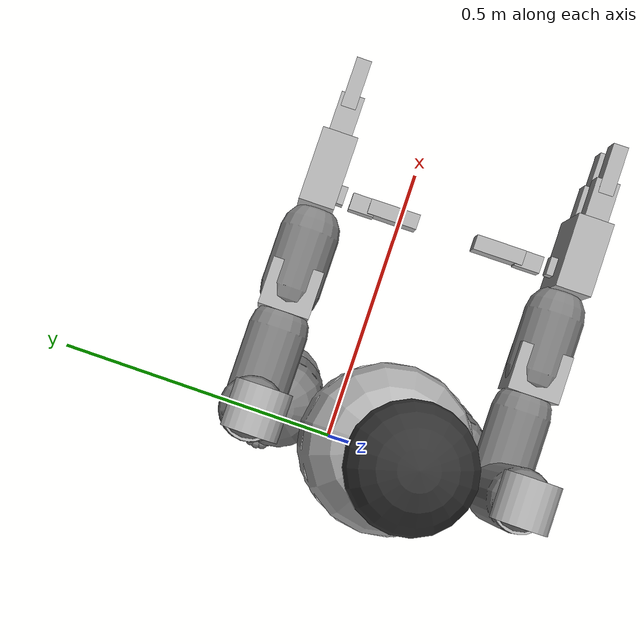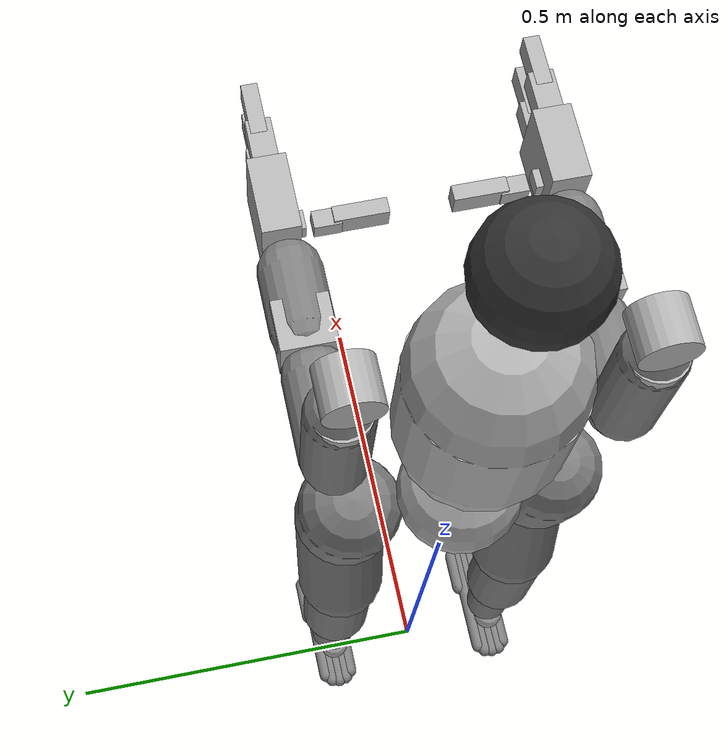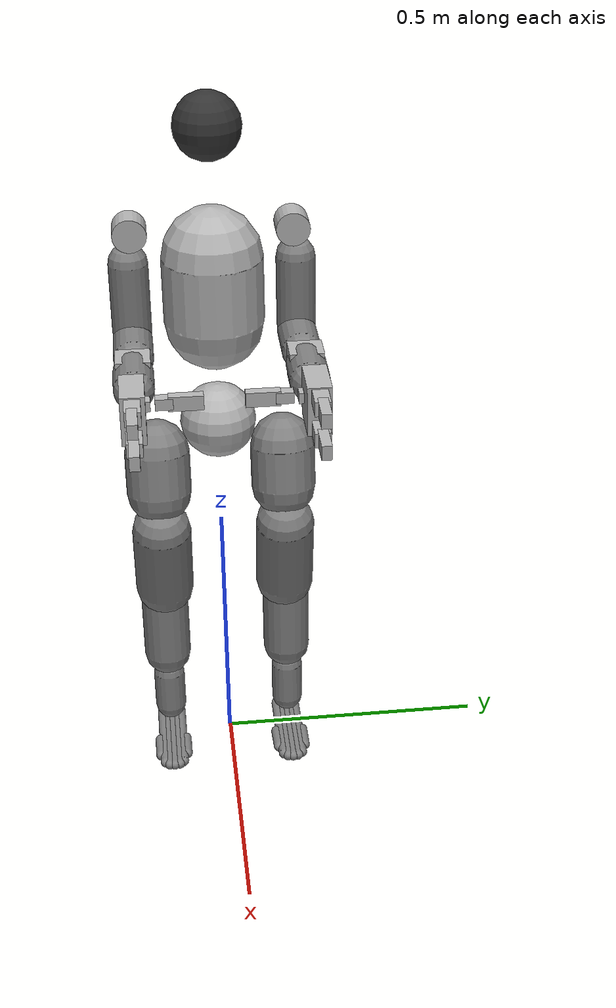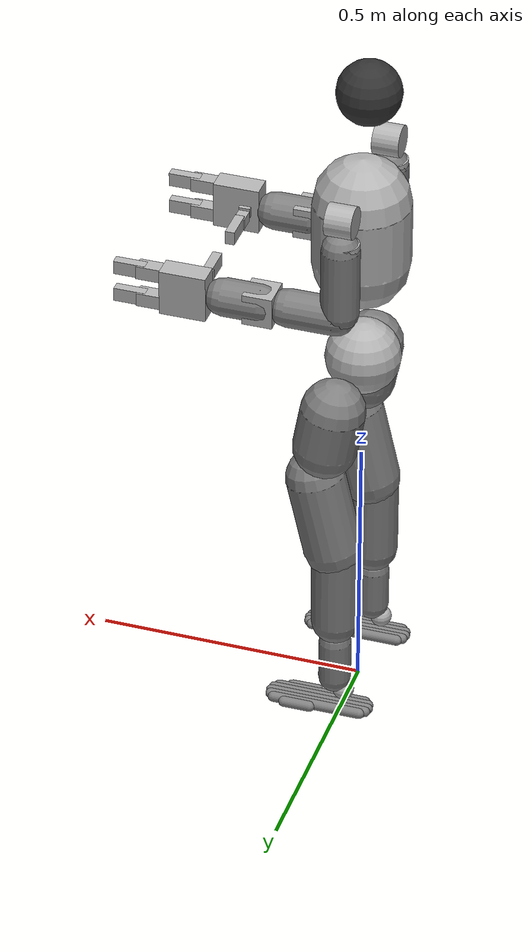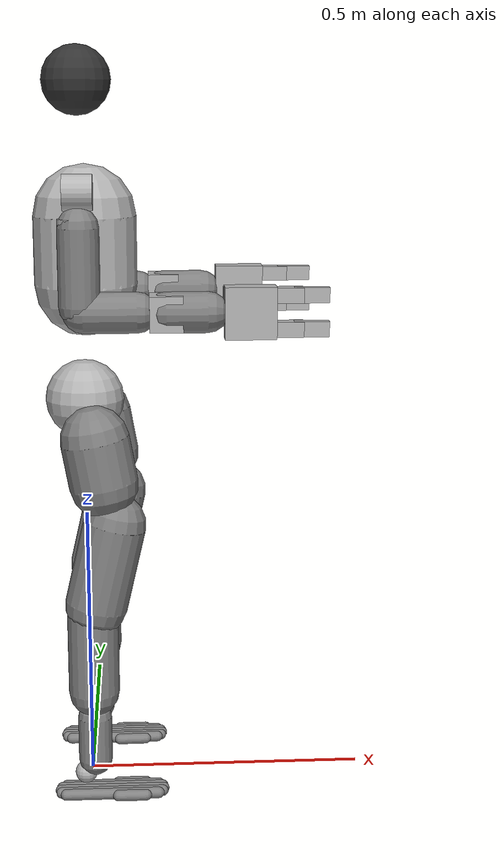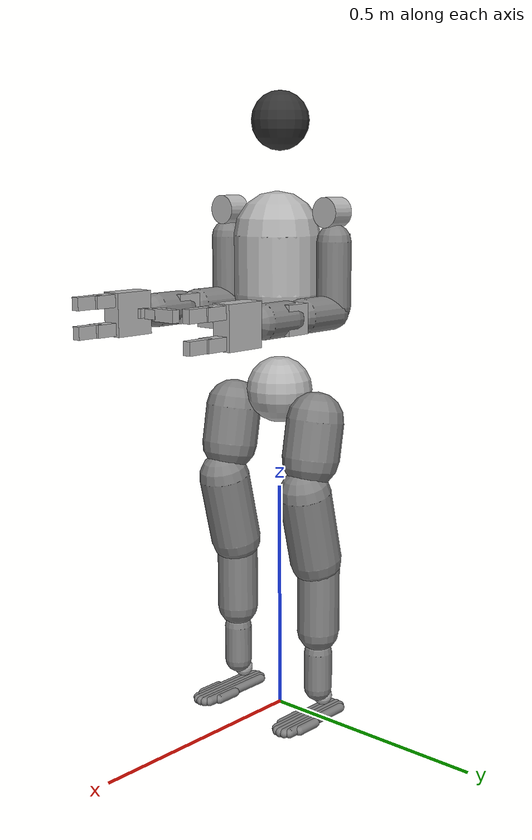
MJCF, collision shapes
<mujoco model="g1">
  <compiler angle="radian" meshdir="meshes"/>

  <asset>
    <mesh name="pelvis" file="pelvis.STL"/>
    <mesh name="pelvis_contour_link" file="pelvis_contour_link.STL"/>
    <mesh name="left_hip_pitch_link" file="left_hip_pitch_link.STL"/>
    <mesh name="left_hip_roll_link" file="left_hip_roll_link.STL"/>
    <mesh name="left_hip_yaw_link" file="left_hip_yaw_link.STL"/>
    <mesh name="left_knee_link" file="left_knee_link.STL"/>
    <mesh name="left_ankle_pitch_link" file="left_ankle_pitch_link.STL"/>
    <mesh name="left_ankle_roll_link" file="left_ankle_roll_link.STL"/>
    <mesh name="right_hip_pitch_link" file="right_hip_pitch_link.STL"/>
    <mesh name="right_hip_roll_link" file="right_hip_roll_link.STL"/>
    <mesh name="right_hip_yaw_link" file="right_hip_yaw_link.STL"/>
    <mesh name="right_knee_link" file="right_knee_link.STL"/>
    <mesh name="right_ankle_pitch_link" file="right_ankle_pitch_link.STL"/>
    <mesh name="right_ankle_roll_link" file="right_ankle_roll_link.STL"/>
    <mesh name="waist_yaw_link" file="waist_yaw_link_rev_1_0.STL"/>
    <mesh name="waist_roll_link" file="waist_roll_link_rev_1_0.STL"/>
    <mesh name="torso_link" file="torso_link_rev_1_0.STL"/>
    <mesh name="logo_link" file="logo_link.STL"/>
    <mesh name="head_link" file="head_link.STL"/>
    <mesh name="left_shoulder_pitch_link" file="left_shoulder_pitch_link.STL"/>
    <mesh name="left_shoulder_roll_link" file="left_shoulder_roll_link.STL"/>
    <mesh name="left_shoulder_yaw_link" file="left_shoulder_yaw_link.STL"/>
    <mesh name="left_elbow_link" file="left_elbow_link.STL"/>
    <mesh name="left_wrist_roll_link" file="left_wrist_roll_link.STL"/>
    <mesh name="left_wrist_pitch_link" file="left_wrist_pitch_link.STL"/>
    <mesh name="left_wrist_yaw_link" file="left_wrist_yaw_link.STL"/>
    <mesh name="left_hand_palm_link" file="left_hand_palm_link.STL"/>
    <mesh name="left_hand_thumb_0_link" file="left_hand_thumb_0_link.STL"/>
    <mesh name="left_hand_thumb_1_link" file="left_hand_thumb_1_link.STL"/>
    <mesh name="left_hand_thumb_2_link" file="left_hand_thumb_2_link.STL"/>
    <mesh name="left_hand_middle_0_link" file="left_hand_middle_0_link.STL"/>
    <mesh name="left_hand_middle_1_link" file="left_hand_middle_1_link.STL"/>
    <mesh name="left_hand_index_0_link" file="left_hand_index_0_link.STL"/>
    <mesh name="left_hand_index_1_link" file="left_hand_index_1_link.STL"/>
    <mesh name="right_shoulder_pitch_link" file="right_shoulder_pitch_link.STL"/>
    <mesh name="right_shoulder_roll_link" file="right_shoulder_roll_link.STL"/>
    <mesh name="right_shoulder_yaw_link" file="right_shoulder_yaw_link.STL"/>
    <mesh name="right_elbow_link" file="right_elbow_link.STL"/>
    <mesh name="right_wrist_roll_link" file="right_wrist_roll_link.STL"/>
    <mesh name="right_wrist_pitch_link" file="right_wrist_pitch_link.STL"/>
    <mesh name="right_wrist_yaw_link" file="right_wrist_yaw_link.STL"/>
    <mesh name="right_hand_palm_link" file="right_hand_palm_link.STL"/>
    <mesh name="right_hand_thumb_0_link" file="right_hand_thumb_0_link.STL"/>
    <mesh name="right_hand_thumb_1_link" file="right_hand_thumb_1_link.STL"/>
    <mesh name="right_hand_thumb_2_link" file="right_hand_thumb_2_link.STL"/>
    <mesh name="right_hand_middle_0_link" file="right_hand_middle_0_link.STL"/>
    <mesh name="right_hand_middle_1_link" file="right_hand_middle_1_link.STL"/>
    <mesh name="right_hand_index_0_link" file="right_hand_index_0_link.STL"/>
    <mesh name="right_hand_index_1_link" file="right_hand_index_1_link.STL"/>
  </asset>

  <worldbody>
    <body name="pelvis" pos="0 0 0.793">
      <inertial pos="0 0 -0.07605" quat="1 0 -0.000399148 0" mass="3.813" diaginertia="0.010549 0.0093089 0.0079184"/>
      <joint name="floating_base_joint" type="free" limited="false" actuatorfrclimited="false"/>
      <geom type="mesh" contype="0" conaffinity="0" group="1" density="0" rgba="0.2 0.2 0.2 1" mesh="pelvis"/>
      <geom type="mesh" contype="0" conaffinity="0" group="1" density="0" rgba="0.7 0.7 0.7 1" mesh="pelvis_contour_link"/>
      <geom name="pelvis_collision" type="sphere" size="0.07" pos="0 0 -0.08" rgba="0.7 0.7 0.7 1"/>
      <site name="imu_in_pelvis" size="0.01" pos="0.04525 0 -0.08339"/>
      <body name="left_hip_pitch_link" pos="0 0.064452 -0.1027">
        <inertial pos="0.002741 0.047791 -0.02606" quat="0.954862 0.293964 0.0302556 0.030122" mass="1.35" diaginertia="0.00181517 0.00153422 0.00116212"/>
        <joint name="left_hip_pitch_joint" pos="0 0 0" axis="0 1 0" range="-2.5307 2.8798" actuatorfrcrange="-88 88"/>
        <geom type="mesh" contype="0" conaffinity="0" group="1" density="0" rgba="0.2 0.2 0.2 1" mesh="left_hip_pitch_link"/>
        <body name="left_hip_roll_link" pos="0 0.052 -0.030465" quat="0.996179 0 -0.0873386 0">
          <inertial pos="0.029812 -0.001045 -0.087934" quat="0.977808 -1.97119e-05 0.205576 -0.0403793" mass="1.52" diaginertia="0.00254986 0.00241169 0.00148755"/>
          <joint name="left_hip_roll_joint" pos="0 0 0" axis="1 0 0" range="-0.5236 2.9671" actuatorfrcrange="-139 139"/>
          <geom type="mesh" contype="0" conaffinity="0" group="1" density="0" rgba="0.7 0.7 0.7 1" mesh="left_hip_roll_link"/>
          <geom type="mesh" contype="0" conaffinity="0" rgba="0.7 0.7 0.7 1" mesh="left_hip_roll_link"/>
          <geom name="left_hip_collision" type="capsule" size="0.06" fromto="0.02 0 0 0.02 0 -0.08" group="3"/>
          <body name="left_hip_yaw_link" pos="0.025001 0 -0.12412">
            <inertial pos="-0.057709 -0.010981 -0.15078" quat="0.600598 0.15832 0.223482 0.751181" mass="1.702" diaginertia="0.00776166 0.00717575 0.00160139"/>
            <joint name="left_hip_yaw_joint" pos="0 0 0" axis="0 0 1" range="-2.7576 2.7576" actuatorfrcrange="-88 88"/>
            <geom type="mesh" contype="0" conaffinity="0" group="1" density="0" rgba="0.7 0.7 0.7 1" mesh="left_hip_yaw_link"/>
            <geom type="mesh" contype="0" conaffinity="0" rgba="0.7 0.7 0.7 1" mesh="left_hip_yaw_link"/>
            <geom name="left_thigh_collision" type="capsule" size="0.055" fromto="-0.0 0 -0.03 -0.06 0 -0.17" group="3"/>
            <body name="left_knee_link" pos="-0.078273 0.0021489 -0.17734" quat="0.996179 0 0.0873386 0">
              <inertial pos="0.005457 0.003964 -0.12074" quat="0.923418 -0.0327699 0.0158246 0.382067" mass="1.932" diaginertia="0.0113804 0.0112778 0.00146458"/>
              <joint name="left_knee_joint" pos="0 0 0" axis="0 1 0" range="-0.087267 2.8798" actuatorfrcrange="-139 139"/>
              <geom type="mesh" contype="0" conaffinity="0" group="1" density="0" rgba="0.7 0.7 0.7 1" mesh="left_knee_link"/>
              <geom type="mesh" contype="0" conaffinity="0" rgba="0.7 0.7 0.7 1" mesh="left_knee_link"/>
              <geom name="left_shin_collision" type="capsule" size="0.045" fromto="0.01 0 0 0.01 0 -0.15" group="3"/>
              <geom name="left_linkage_brace_collision" type="capsule" size="0.03" fromto="0.01 0 -0.2 0.01 0 -0.28" group="3"/>
              <body name="left_ankle_pitch_link" pos="0 -9.4445e-05 -0.30001">
                <inertial pos="-0.007269 0 0.011137" quat="0.603053 0.369225 0.369225 0.603053" mass="0.074" diaginertia="1.89e-05 1.40805e-05 6.9195e-06"/>
                <joint name="left_ankle_pitch_joint" pos="0 0 0" axis="0 1 0" range="-0.87267 0.5236" actuatorfrcrange="-50 50"/>
                <geom type="mesh" contype="0" conaffinity="0" group="1" density="0" rgba="0.7 0.7 0.7 1" mesh="left_ankle_pitch_link"/>
                <geom type="sphere" size="0.02" pos="-0.007 0 -0.006" rgba="0.7 0.7 0.7 1"/>
                <body name="left_ankle_roll_link" pos="0 0 -0.017558">
                  <inertial pos="0.026505 0 -0.016425" quat="-0.000481092 0.728482 -0.000618967 0.685065" mass="0.608" diaginertia="0.00167218 0.0016161 0.000217621"/>
                  <joint name="left_ankle_roll_joint" pos="0 0 0" axis="1 0 0" range="-0.2618 0.2618" actuatorfrcrange="-50 50"/>
                  <geom type="mesh" contype="0" conaffinity="0" group="1" density="0" rgba="0.2 0.2 0.2 1" mesh="left_ankle_roll_link"/>
                  <geom name="left_foot1_collision" type="capsule" size="0.01" fromto="0.1 -0.026 -0.025 0.05 -0.027 -0.025" group="3"/>
                  <geom name="left_foot2_collision" type="capsule" size="0.01" fromto="-0.044 -0.018 -0.025 0.123 -0.018 -0.025" group="3"/>
                  <geom name="left_foot3_collision" type="capsule" size="0.01" fromto="-0.052 -0.01 -0.025 0.13 -0.01 -0.025" group="3"/>
                  <geom name="left_foot4_collision" type="capsule" size="0.01" fromto="-0.054 0 -0.025 0.132 0 -0.025" group="3"/>
                  <geom name="left_foot5_collision" type="capsule" size="0.01" fromto="-0.052 0.01 -0.025 0.13 0.01 -0.025" group="3"/>
                  <geom name="left_foot6_collision" type="capsule" size="0.01" fromto="-0.044 0.018 -0.025 0.123 0.018 -0.025" group="3"/>
                  <geom name="left_foot7_collision" type="capsule" size="0.01" fromto="0.1 0.026 -0.025 0.05 0.026 -0.025" group="3"/>
                  <site name="left_foot" rgba="1 0 0 1" pos="0.04 0 -0.035"/>
                </body>
              </body>
            </body>
          </body>
        </body>
      </body>
      <body name="right_hip_pitch_link" pos="0 -0.064452 -0.1027">
        <inertial pos="0.002741 -0.047791 -0.02606" quat="0.954862 -0.293964 0.0302556 -0.030122" mass="1.35" diaginertia="0.00181517 0.00153422 0.00116212"/>
        <joint name="right_hip_pitch_joint" pos="0 0 0" axis="0 1 0" range="-2.5307 2.8798" actuatorfrcrange="-88 88"/>
        <geom type="mesh" contype="0" conaffinity="0" group="1" density="0" rgba="0.2 0.2 0.2 1" mesh="right_hip_pitch_link"/>
        <body name="right_hip_roll_link" pos="0 -0.052 -0.030465" quat="0.996179 0 -0.0873386 0">
          <inertial pos="0.029812 0.001045 -0.087934" quat="0.977808 1.97119e-05 0.205576 0.0403793" mass="1.52" diaginertia="0.00254986 0.00241169 0.00148755"/>
          <joint name="right_hip_roll_joint" pos="0 0 0" axis="1 0 0" range="-2.9671 0.5236" actuatorfrcrange="-139 139"/>
          <geom type="mesh" contype="0" conaffinity="0" group="1" density="0" rgba="0.7 0.7 0.7 1" mesh="right_hip_roll_link"/>
          <geom type="mesh" contype="0" conaffinity="0" rgba="0.7 0.7 0.7 1" mesh="right_hip_roll_link"/>
          <geom name="right_hip_collision" type="capsule" size="0.06" fromto="0.02 0 0 0.02 0 -0.08" group="3"/>
          <body name="right_hip_yaw_link" pos="0.025001 0 -0.12412">
            <inertial pos="-0.057709 0.010981 -0.15078" quat="0.751181 0.223482 0.15832 0.600598" mass="1.702" diaginertia="0.00776166 0.00717575 0.00160139"/>
            <joint name="right_hip_yaw_joint" pos="0 0 0" axis="0 0 1" range="-2.7576 2.7576" actuatorfrcrange="-88 88"/>
            <geom type="mesh" contype="0" conaffinity="0" group="1" density="0" rgba="0.7 0.7 0.7 1" mesh="right_hip_yaw_link"/>
            <geom type="mesh" contype="0" conaffinity="0" rgba="0.7 0.7 0.7 1" mesh="right_hip_yaw_link"/>
            <geom name="right_thigh_collision" type="capsule" size="0.055" fromto="-0.0 0 -0.03 -0.06 0 -0.17" group="3"/>
            <body name="right_knee_link" pos="-0.078273 -0.0021489 -0.17734" quat="0.996179 0 0.0873386 0">
              <inertial pos="0.005457 -0.003964 -0.12074" quat="0.923439 0.0345276 0.0116333 -0.382012" mass="1.932" diaginertia="0.011374 0.0112843 0.00146452"/>
              <joint name="right_knee_joint" pos="0 0 0" axis="0 1 0" range="-0.087267 2.8798" actuatorfrcrange="-139 139"/>
              <geom type="mesh" contype="0" conaffinity="0" group="1" density="0" rgba="0.7 0.7 0.7 1" mesh="right_knee_link"/>
              <geom type="mesh" contype="0" conaffinity="0" rgba="0.7 0.7 0.7 1" mesh="right_knee_link"/>
              <geom name="right_shin_collision" type="capsule" size="0.045" fromto="0.01 0 0 0.01 0 -0.15" group="3"/>
              <geom name="right_linkage_brace_collision" type="capsule" size="0.03" fromto="0.01 0 -0.2 0.01 0 -0.28" group="3"/>
              <body name="right_ankle_pitch_link" pos="0 9.4445e-05 -0.30001">
                <inertial pos="-0.007269 0 0.011137" quat="0.603053 0.369225 0.369225 0.603053" mass="0.074" diaginertia="1.89e-05 1.40805e-05 6.9195e-06"/>
                <joint name="right_ankle_pitch_joint" pos="0 0 0" axis="0 1 0" range="-0.87267 0.5236" actuatorfrcrange="-50 50"/>
                <geom type="mesh" contype="0" conaffinity="0" group="1" density="0" rgba="0.7 0.7 0.7 1" mesh="right_ankle_pitch_link"/>
                <geom type="sphere" size="0.02" pos="-0.007 0 -0.006" rgba="0.7 0.7 0.7 1"/>
                <body name="right_ankle_roll_link" pos="0 0 -0.017558">
                  <inertial pos="0.026505 0 -0.016425" quat="0.000481092 0.728482 0.000618967 0.685065" mass="0.608" diaginertia="0.00167218 0.0016161 0.000217621"/>
                  <joint name="right_ankle_roll_joint" pos="0 0 0" axis="1 0 0" range="-0.2618 0.2618" actuatorfrcrange="-50 50"/>
                  <geom type="mesh" contype="0" conaffinity="0" group="1" density="0" rgba="0.2 0.2 0.2 1" mesh="right_ankle_roll_link"/>
                  <geom name="right_foot1_collision" type="capsule" size="0.01" fromto="0.1 -0.026 -0.025 0.05 -0.026 -0.025" group="3"/>
                  <geom name="right_foot2_collision" type="capsule" size="0.01" fromto="-0.044 -0.018 -0.025 0.123 -0.018 -0.025" group="3"/>
                  <geom name="right_foot3_collision" type="capsule" size="0.01" fromto="-0.052 -0.01 -0.025 0.13 -0.01 -0.025" group="3"/>
                  <geom name="right_foot4_collision" type="capsule" size="0.01" fromto="-0.054 0 -0.025 0.132 0 -0.025" group="3"/>
                  <geom name="right_foot5_collision" type="capsule" size="0.01" fromto="-0.052 0.01 -0.025 0.13 0.01 -0.025" group="3"/>
                  <geom name="right_foot6_collision" type="capsule" size="0.01" fromto="-0.044 0.018 -0.025 0.123 0.018 -0.025" group="3"/>
                  <geom name="right_foot7_collision" type="capsule" size="0.01" fromto="0.1 0.026 -0.025 0.05 0.026 -0.025" group="3"/>
                  <site name="right_foot" rgba="1 0 0 1" pos="0.04 0 -0.035"/>
                </body>
              </body>
            </body>
          </body>
        </body>
      </body>
      <body name="waist_yaw_link">
        <inertial pos="0.003494 0.000233 0.018034" quat="0.289697 0.591001 -0.337795 0.672821" mass="0.214" diaginertia="0.000163531 0.000107714 0.000102205"/>
        <joint name="waist_yaw_joint" pos="0 0 0" axis="0 0 1" range="-2.618 2.618" actuatorfrcrange="-88 88"/>
        <geom type="mesh" contype="0" conaffinity="0" group="1" density="0" rgba="0.7 0.7 0.7 1" mesh="waist_yaw_link"/>
        <body name="waist_roll_link" pos="-0.0039635 0 0.044">
          <inertial pos="0 2.3e-05 0" quat="0.5 0.5 -0.5 0.5" mass="0.086" diaginertia="8.245e-06 7.079e-06 6.339e-06"/>
          <joint name="waist_roll_joint" pos="0 0 0" axis="1 0 0" range="-0.52 0.52" actuatorfrcrange="-50 50"/>
          <geom type="mesh" contype="0" conaffinity="0" group="1" density="0" rgba="0.7 0.7 0.7 1" mesh="waist_roll_link"/>
          <body name="torso_link">
            <inertial pos="0.00203158 0.000339683 0.184568" quat="0.999803 -6.03319e-05 0.0198256 0.00131986" mass="7.818" diaginertia="0.121847 0.109825 0.0273735"/>
            <joint name="waist_pitch_joint" pos="0 0 0" axis="0 1 0" range="-0.52 0.52" actuatorfrcrange="-50 50"/>
            <geom type="mesh" contype="0" conaffinity="0" group="1" density="0" rgba="0.7 0.7 0.7 1" mesh="torso_link"/>
            <geom name="torso_collision" type="capsule" size="0.09" fromto="0.01 0 0.08 0.01 0 0.2" rgba="0.7 0.7 0.7 1"/>
            <geom pos="0.0039635 0 -0.044" quat="1 0 0 0" type="mesh" contype="0" conaffinity="0" group="1" density="0" rgba="0.2 0.2 0.2 1" mesh="logo_link"/>
            <geom pos="0.0039635 0 -0.044" quat="1 0 0 0" type="mesh" contype="0" conaffinity="0" rgba="0.2 0.2 0.2 1" mesh="logo_link"/>
            <geom pos="0.0039635 0 -0.044" type="mesh" contype="0" conaffinity="0" group="1" density="0" rgba="0.2 0.2 0.2 1" mesh="head_link"/>
            <geom name="head_collision" type="sphere" size="0.06" pos="0 0 0.43" rgba="0.2 0.2 0.2 1"/>
            <site name="imu_in_torso" size="0.01" pos="-0.03959 -0.00224 0.14792"/>
            <camera name="ego_left"  pos="0.08 0.0315 0.42" xyaxes="0 -1 0 0 0 1" fovy="58"/>
            <camera name="ego_right" pos="0.08 -0.0315 0.42" xyaxes="0 -1 0 0 0 1" fovy="58"/>
            <body name="left_shoulder_pitch_link" pos="0.0039563 0.10022 0.24778" quat="0.990264 0.139201 1.38722e-05 -9.86868e-05">
              <inertial pos="0 0.035892 -0.011628" quat="0.654152 0.0130458 -0.326267 0.68225" mass="0.718" diaginertia="0.000465864 0.000432842 0.000406394"/>
              <joint name="left_shoulder_pitch_joint" pos="0 0 0" axis="0 1 0" range="-3.0892 2.6704" actuatorfrcrange="-25 25"/>
              <geom type="mesh" contype="0" conaffinity="0" group="1" density="0" rgba="0.7 0.7 0.7 1" mesh="left_shoulder_pitch_link"/>
              <geom size="0.03 0.025" pos="0 0.04 -0.01" quat="0.707107 0 0.707107 0" type="cylinder" rgba="0.7 0.7 0.7 1"/>
              <body name="left_shoulder_roll_link" pos="0 0.038 -0.013831" quat="0.990268 -0.139172 0 0">
                <inertial pos="-0.000227 0.00727 -0.063243" quat="0.701256 -0.0196223 -0.00710317 0.712604" mass="0.643" diaginertia="0.000691311 0.000618011 0.000388977"/>
                <joint name="left_shoulder_roll_joint" pos="0 0 0" axis="1 0 0" range="-1.5882 2.2515" actuatorfrcrange="-25 25"/>
                <geom type="mesh" contype="0" conaffinity="0" group="1" density="0" rgba="0.7 0.7 0.7 1" mesh="left_shoulder_roll_link"/>
                <geom size="0.03 0.015" pos="-0.004 0.006 -0.053" type="cylinder" rgba="0.7 0.7 0.7 1"/>
                <body name="left_shoulder_yaw_link" pos="0 0.00624 -0.1032">
                  <inertial pos="0.010773 -0.002949 -0.072009" quat="0.716879 -0.0964829 -0.0679942 0.687134" mass="0.734" diaginertia="0.00106187 0.00103217 0.000400661"/>
                  <joint name="left_shoulder_yaw_joint" pos="0 0 0" axis="0 0 1" range="-2.618 2.618" actuatorfrcrange="-25 25"/>
                  <geom type="mesh" contype="0" conaffinity="0" group="1" density="0" rgba="0.7 0.7 0.7 1" mesh="left_shoulder_yaw_link"/>
                  <geom type="mesh" contype="0" conaffinity="0" rgba="0.7 0.7 0.7 1" mesh="left_shoulder_yaw_link"/>
                  <geom name="left_shoulder_yaw_collision" type="capsule" size="0.035" fromto="0 0 -0.08 0 0 0.05" group="3"/>
                  <body name="left_elbow_link" pos="0.015783 0 -0.080518">
                    <inertial pos="0.064956 0.004454 -0.010062" quat="0.541765 0.636132 0.388821 0.388129" mass="0.6" diaginertia="0.000443035 0.000421612 0.000259353"/>
                    <joint name="left_elbow_joint" pos="0 0 0" axis="0 1 0" range="-1.0472 2.0944" actuatorfrcrange="-25 25"/>
                    <geom type="mesh" contype="0" conaffinity="0" group="1" density="0" rgba="0.7 0.7 0.7 1" mesh="left_elbow_link"/>
                    <geom type="mesh" contype="0" conaffinity="0" rgba="0.7 0.7 0.7 1" mesh="left_elbow_link"/>
                    <geom name="left_elbow_yaw_collision" type="capsule" size="0.035" fromto="-0.01 0 -0.01 0.08 0 -0.01" group="3"/>
                    <body name="left_wrist_roll_link" pos="0.1 0.00188791 -0.01">
                      <inertial pos="0.0171394 0.000537591 4.8864e-07" quat="0.575338 0.411667 -0.574906 0.411094" mass="0.085445" diaginertia="5.48211e-05 4.96646e-05 3.57798e-05"/>
                      <joint name="left_wrist_roll_joint" pos="0 0 0" axis="1 0 0" range="-1.97222 1.97222" actuatorfrcrange="-25 25"/>
                      <geom type="mesh" contype="0" conaffinity="0" group="1" density="0" rgba="0.7 0.7 0.7 1" mesh="left_wrist_roll_link"/>
                      <geom type="box" size="0.028 0.0302 0.03" pos="0.028 -0.0002 0" rgba="0.7 0.7 0.7 1"/>
                      <body name="left_wrist_pitch_link" pos="0.038 0 0">
                        <inertial pos="0.0229999 -0.00111685 -0.00111658" quat="0.249998 0.661363 0.293036 0.643608" mass="0.48405" diaginertia="0.000430353 0.000429873 0.000164648"/>
                        <joint name="left_wrist_pitch_joint" pos="0 0 0" axis="0 1 0" range="-1.61443 1.61443" actuatorfrcrange="-5 5"/>
                        <geom type="mesh" contype="0" conaffinity="0" group="1" density="0" rgba="0.7 0.7 0.7 1" mesh="left_wrist_pitch_link"/>
                        <geom type="mesh" contype="0" conaffinity="0" rgba="0.7 0.7 0.7 1" mesh="left_wrist_pitch_link"/>
                        <geom name="left_wrist_collision" type="capsule" size="0.035" fromto="-0.01 0 0 0.06 0 0" group="3"/>
                        <body name="left_wrist_yaw_link" pos="0.046 0 0">
                          <inertial pos="0.0885506 0.00212216 -0.000374562" quat="0.487149 0.493844 0.513241 0.505358" mass="0.457415" diaginertia="0.00105989 0.000895419 0.000323842"/>
                          <joint name="left_wrist_yaw_joint" pos="0 0 0" axis="0 0 1" range="-1.61443 1.61443" actuatorfrcrange="-5 5"/>
                          <geom type="mesh" contype="0" conaffinity="0" group="1" density="0" rgba="0.7 0.7 0.7 1" mesh="left_wrist_yaw_link"/>
                          <geom type="mesh" contype="0" conaffinity="0" rgba="0.7 0.7 0.7 1" mesh="left_wrist_yaw_link"/>
                          <geom pos="0.0415 0.003 0" quat="1 0 0 0" type="mesh" contype="0" conaffinity="0" group="1" density="0" rgba="0.7 0.7 0.7 1" mesh="left_hand_palm_link"/>
                          <geom name="left_hand_collision" pos="0.0848 0.0035 0" type="box" size="0.0433 0.0208 0.0439" rgba="0.7 0.7 0.7 1"/>
                          <site name="left_palm" pos="0.08 0 0" size="0.01"/>
                          <body name="left_hand_thumb_0_link" pos="0.067 0.003 0">
                            <inertial pos="-0.000884246 -0.00863407 0.000944293" quat="0.462991 0.643965 -0.460173 0.398986" mass="0.0862366" diaginertia="1.6546e-05 1.60058e-05 1.43741e-05"/>
                            <joint name="left_hand_thumb_0_joint" pos="0 0 0" axis="0 1 0" range="-1.0472 1.0472" actuatorfrcrange="-2.45 2.45"/>
                            <geom type="mesh" contype="0" conaffinity="0" group="1" density="0" rgba="0.7 0.7 0.7 1" mesh="left_hand_thumb_0_link"/>
                            <geom type="box" size="0.0108 0.0142 0.0095" pos="-0.0007 -0.0142 0" rgba="0.7 0.7 0.7 1"/>
                            <body name="left_hand_thumb_1_link" pos="-0.0025 -0.0193 0">
                              <inertial pos="-0.000827888 -0.0354744 -0.0003809" quat="0.685598 0.705471 -0.15207 0.0956069" mass="0.0588507" diaginertia="1.28514e-05 1.22902e-05 5.9666e-06"/>
                              <joint name="left_hand_thumb_1_joint" pos="0 0 0" axis="0 0 1" range="-0.724312 1.0472" actuatorfrcrange="-1.4 1.4"/>
                              <geom type="mesh" contype="0" conaffinity="0" group="1" density="0" rgba="0.7 0.7 0.7 1" mesh="left_hand_thumb_1_link"/>
                              <geom size="0.01 0.015 0.01" pos="-0.001 -0.032 0" type="box" rgba="0.7 0.7 0.7 1"/>
                              <body name="left_hand_thumb_2_link" pos="0 -0.0458 0">
                                <inertial pos="-0.00171735 -0.0262819 0.000107789" quat="0.703174 0.710977 -0.00017564 -0.00766553" mass="0.0203063" diaginertia="4.61314e-06 3.86645e-06 1.53495e-06"/>
                                <joint name="left_hand_thumb_2_joint" pos="0 0 0" axis="0 0 1" range="0 1.74533" actuatorfrcrange="-1.4 1.4"/>
                                <geom type="mesh" contype="0" conaffinity="0" group="1" density="0" rgba="0.7 0.7 0.7 1" mesh="left_hand_thumb_2_link"/>
                                <geom type="box" size="0.0088 0.0295 0.013" pos="-0.0001 -0.0225 -0.0001" rgba="0.7 0.7 0.7 1"/>
                              </body>
                            </body>
                          </body>
                          <body name="left_hand_middle_0_link" pos="0.1192 0.0046 -0.0285">
                            <inertial pos="0.0354744 0.000827888 0.0003809" quat="0.391313 0.552395 0.417187 0.606373" mass="0.0588507" diaginertia="1.28514e-05 1.22902e-05 5.9666e-06"/>
                            <joint name="left_hand_middle_0_joint" pos="0 0 0" axis="0 0 1" range="-1.5708 0" actuatorfrcrange="-1.4 1.4"/>
                            <geom type="mesh" contype="0" conaffinity="0" group="1" density="0" rgba="0.7 0.7 0.7 1" mesh="left_hand_middle_0_link"/>
                            <geom type="box" size="0.0309 0.0136 0.0129" pos="0.0239 -0.001 0.0001" rgba="0.7 0.7 0.7 1"/>
                            <body name="left_hand_middle_1_link" pos="0.0458 0 0">
                              <inertial pos="0.0262819 0.00171735 -0.000107789" quat="0.502612 0.491799 0.502639 0.502861" mass="0.0203063" diaginertia="4.61314e-06 3.86645e-06 1.53495e-06"/>
                              <joint name="left_hand_middle_1_joint" pos="0 0 0" axis="0 0 1" range="-1.74533 0" actuatorfrcrange="-1.4 1.4"/>
                              <geom type="mesh" contype="0" conaffinity="0" group="1" density="0" rgba="0.7 0.7 0.7 1" mesh="left_hand_middle_1_link"/>
                              <geom type="box" size="0.0295 0.0088 0.013" pos="0.0225 0.0001 0.0001" rgba="0.7 0.7 0.7 1"/>
                            </body>
                          </body>
                          <body name="left_hand_index_0_link" pos="0.1192 0.0046 0.0285">
                            <inertial pos="0.0354744 0.000827888 0.0003809" quat="0.391313 0.552395 0.417187 0.606373" mass="0.0588507" diaginertia="1.28514e-05 1.22902e-05 5.9666e-06"/>
                            <joint name="left_hand_index_0_joint" pos="0 0 0" axis="0 0 1" range="-1.5708 0" actuatorfrcrange="-1.4 1.4"/>
                            <geom type="mesh" contype="0" conaffinity="0" group="1" density="0" rgba="0.7 0.7 0.7 1" mesh="left_hand_index_0_link"/>
                            <geom type="box" size="0.0309 0.0136 0.0129" pos="0.0239 -0.001 0.0001" rgba="0.7 0.7 0.7 1"/>
                            <body name="left_hand_index_1_link" pos="0.0458 0 0">
                              <inertial pos="0.0262819 0.00171735 -0.000107789" quat="0.502612 0.491799 0.502639 0.502861" mass="0.0203063" diaginertia="4.61314e-06 3.86645e-06 1.53495e-06"/>
                              <joint name="left_hand_index_1_joint" pos="0 0 0" axis="0 0 1" range="-1.74533 0" actuatorfrcrange="-1.4 1.4"/>
                              <geom type="mesh" contype="0" conaffinity="0" group="1" density="0" rgba="0.7 0.7 0.7 1" mesh="left_hand_index_1_link"/>
                              <geom type="box" size="0.0295 0.0088 0.013" pos="0.0225 0.0001 0.0001" rgba="0.7 0.7 0.7 1"/>
                            </body>
                          </body>
                        </body>
                      </body>
                    </body>
                  </body>
                </body>
              </body>
            </body>
            <body name="right_shoulder_pitch_link" pos="0.0039563 -0.10021 0.24778" quat="0.990264 -0.139201 1.38722e-05 9.86868e-05">
              <inertial pos="0 -0.035892 -0.011628" quat="0.68225 -0.326267 0.0130458 0.654152" mass="0.718" diaginertia="0.000465864 0.000432842 0.000406394"/>
              <joint name="right_shoulder_pitch_joint" pos="0 0 0" axis="0 1 0" range="-3.0892 2.6704" actuatorfrcrange="-25 25"/>
              <geom type="mesh" contype="0" conaffinity="0" group="1" density="0" rgba="0.7 0.7 0.7 1" mesh="right_shoulder_pitch_link"/>
              <geom size="0.03 0.025" pos="0 -0.04 -0.01" quat="0.707107 0 0.707107 0" type="cylinder" rgba="0.7 0.7 0.7 1"/>
              <body name="right_shoulder_roll_link" pos="0 -0.038 -0.013831" quat="0.990268 0.139172 0 0">
                <inertial pos="-0.000227 -0.00727 -0.063243" quat="0.712604 -0.00710317 -0.0196223 0.701256" mass="0.643" diaginertia="0.000691311 0.000618011 0.000388977"/>
                <joint name="right_shoulder_roll_joint" pos="0 0 0" axis="1 0 0" range="-2.2515 1.5882" actuatorfrcrange="-25 25"/>
                <geom type="mesh" contype="0" conaffinity="0" group="1" density="0" rgba="0.7 0.7 0.7 1" mesh="right_shoulder_roll_link"/>
                <geom size="0.03 0.015" pos="-0.004 -0.006 -0.053" type="cylinder" rgba="0.7 0.7 0.7 1"/>
                <body name="right_shoulder_yaw_link" pos="0 -0.00624 -0.1032">
                  <inertial pos="0.010773 0.002949 -0.072009" quat="0.687134 -0.0679942 -0.0964829 0.716879" mass="0.734" diaginertia="0.00106187 0.00103217 0.000400661"/>
                  <joint name="right_shoulder_yaw_joint" pos="0 0 0" axis="0 0 1" range="-2.618 2.618" actuatorfrcrange="-25 25"/>
                  <geom type="mesh" contype="0" conaffinity="0" group="1" density="0" rgba="0.7 0.7 0.7 1" mesh="right_shoulder_yaw_link"/>
                  <geom type="mesh" contype="0" conaffinity="0" rgba="0.7 0.7 0.7 1" mesh="right_shoulder_yaw_link"/>
                  <geom name="right_shoulder_yaw_collision" type="capsule" size="0.035" fromto="0 0 -0.08 0 0 0.05" group="3"/>
                  <body name="right_elbow_link" pos="0.015783 0 -0.080518">
                    <inertial pos="0.064956 -0.004454 -0.010062" quat="0.388129 0.388821 0.636132 0.541765" mass="0.6" diaginertia="0.000443035 0.000421612 0.000259353"/>
                    <joint name="right_elbow_joint" pos="0 0 0" axis="0 1 0" range="-1.0472 2.0944" actuatorfrcrange="-25 25"/>
                    <geom type="mesh" contype="0" conaffinity="0" group="1" density="0" rgba="0.7 0.7 0.7 1" mesh="right_elbow_link"/>
                    <geom type="mesh" contype="0" conaffinity="0" rgba="0.7 0.7 0.7 1" mesh="right_elbow_link"/>
                    <geom name="right_elbow_yaw_collision" type="capsule" size="0.035" fromto="-0.01 0 -0.01 0.08 0 -0.01" group="3"/>
                    <body name="right_wrist_roll_link" pos="0.1 -0.00188791 -0.01">
                      <inertial pos="0.0171394 -0.000537591 4.8864e-07" quat="0.411667 0.575338 -0.411094 0.574906" mass="0.085445" diaginertia="5.48211e-05 4.96646e-05 3.57798e-05"/>
                      <joint name="right_wrist_roll_joint" pos="0 0 0" axis="1 0 0" range="-1.97222 1.97222" actuatorfrcrange="-25 25"/>
                      <geom type="mesh" contype="0" conaffinity="0" group="1" density="0" rgba="0.7 0.7 0.7 1" mesh="right_wrist_roll_link"/>
                      <geom type="box" size="0.028 0.0302 0.03" pos="0.028 0.0002 0" rgba="0.7 0.7 0.7 1"/>
                      <body name="right_wrist_pitch_link" pos="0.038 0 0">
                        <inertial pos="0.0229999 0.00111685 -0.00111658" quat="0.643608 0.293036 0.661363 0.249998" mass="0.48405" diaginertia="0.000430353 0.000429873 0.000164648"/>
                        <joint name="right_wrist_pitch_joint" pos="0 0 0" axis="0 1 0" range="-1.61443 1.61443" actuatorfrcrange="-5 5"/>
                        <geom type="mesh" contype="0" conaffinity="0" group="1" density="0" rgba="0.7 0.7 0.7 1" mesh="right_wrist_pitch_link"/>
                        <geom type="mesh" contype="0" conaffinity="0" rgba="0.7 0.7 0.7 1" mesh="right_wrist_pitch_link"/>
                        <geom name="right_wrist_collision" type="capsule" size="0.035" fromto="-0.01 0 0 0.06 0 0" group="3"/>
                        <body name="right_wrist_yaw_link" pos="0.046 0 0">
                          <inertial pos="0.0885506 -0.00212216 -0.000374562" quat="0.505358 0.513241 0.493844 0.487149" mass="0.457415" diaginertia="0.00105989 0.000895419 0.000323842"/>
                          <joint name="right_wrist_yaw_joint" pos="0 0 0" axis="0 0 1" range="-1.61443 1.61443" actuatorfrcrange="-5 5"/>
                          <geom type="mesh" contype="0" conaffinity="0" group="1" density="0" rgba="0.7 0.7 0.7 1" mesh="right_wrist_yaw_link"/>
                          <geom type="mesh" contype="0" conaffinity="0" rgba="0.7 0.7 0.7 1" mesh="right_wrist_yaw_link"/>
                          <geom pos="0.0415 -0.003 0" quat="1 0 0 0" type="mesh" contype="0" conaffinity="0" group="1" density="0" rgba="0.7 0.7 0.7 1" mesh="right_hand_palm_link"/>
                          <geom name="right_hand_collision" pos="0.0848 -0.0035 0" type="box" size="0.0433 0.0208 0.0439" rgba="0.7 0.7 0.7 1"/>
                          <site name="right_palm" pos="0.08 0 0" size="0.01"/>
                          <body name="right_hand_thumb_0_link" pos="0.067 -0.003 0">
                            <inertial pos="-0.000884246 0.00863407 0.000944293" quat="0.643965 0.462991 -0.398986 0.460173" mass="0.0862366" diaginertia="1.6546e-05 1.60058e-05 1.43741e-05"/>
                            <joint name="right_hand_thumb_0_joint" pos="0 0 0" axis="0 1 0" range="-1.0472 1.0472" actuatorfrcrange="-2.45 2.45"/>
                            <geom type="mesh" contype="0" conaffinity="0" group="1" density="0" rgba="0.7 0.7 0.7 1" mesh="right_hand_thumb_0_link"/>
                            <geom type="box" size="0.0108 0.0142 0.0095" pos="-0.0007 0.0142 0" rgba="0.7 0.7 0.7 1"/>
                            <body name="right_hand_thumb_1_link" pos="-0.0025 0.0193 0">
                              <inertial pos="-0.000827888 0.0354744 -0.0003809" quat="0.705471 0.685598 -0.0956069 0.15207" mass="0.0588507" diaginertia="1.28514e-05 1.22902e-05 5.9666e-06"/>
                              <joint name="right_hand_thumb_1_joint" pos="0 0 0" axis="0 0 1" range="-1.0472 0.724312" actuatorfrcrange="-1.4 1.4"/>
                              <geom type="mesh" contype="0" conaffinity="0" group="1" density="0" rgba="0.7 0.7 0.7 1" mesh="right_hand_thumb_1_link"/>
                              <geom size="0.01 0.015 0.01" pos="-0.001 0.032 0" type="box" rgba="0.7 0.7 0.7 1"/>
                              <body name="right_hand_thumb_2_link" pos="0 0.0458 0">
                                <inertial pos="-0.00171735 0.0262819 0.000107789" quat="0.710977 0.703174 0.00766553 0.00017564" mass="0.0203063" diaginertia="4.61314e-06 3.86645e-06 1.53495e-06"/>
                                <joint name="right_hand_thumb_2_joint" pos="0 0 0" axis="0 0 1" range="-1.74533 0" actuatorfrcrange="-1.4 1.4"/>
                                <geom type="mesh" contype="0" conaffinity="0" group="1" density="0" rgba="0.7 0.7 0.7 1" mesh="right_hand_thumb_2_link"/>
                                <geom type="box" size="0.0088 0.0295 0.013" pos="-0.0001 0.0225 0.0001" rgba="0.7 0.7 0.7 1"/>
                              </body>
                            </body>
                          </body>
                          <body name="right_hand_middle_0_link" pos="0.1192 -0.0046 -0.0285">
                            <inertial pos="0.0354744 -0.000827888 0.0003809" quat="0.606373 0.417187 0.552395 0.391313" mass="0.0588507" diaginertia="1.28514e-05 1.22902e-05 5.9666e-06"/>
                            <joint name="right_hand_middle_0_joint" pos="0 0 0" axis="0 0 1" range="0 1.5708" actuatorfrcrange="-1.4 1.4"/>
                            <geom type="mesh" contype="0" conaffinity="0" group="1" density="0" rgba="0.7 0.7 0.7 1" mesh="right_hand_middle_0_link"/>
                            <geom type="box" size="0.0309 0.0136 0.0129" pos="0.0239 0.001 0.0001" rgba="0.7 0.7 0.7 1"/>
                            <body name="right_hand_middle_1_link" pos="0.0458 0 0">
                              <inertial pos="0.0262819 -0.00171735 -0.000107789" quat="0.502861 0.502639 0.491799 0.502612" mass="0.0203063" diaginertia="4.61314e-06 3.86645e-06 1.53495e-06"/>
                              <joint name="right_hand_middle_1_joint" pos="0 0 0" axis="0 0 1" range="0 1.74533" actuatorfrcrange="-1.4 1.4"/>
                              <geom type="mesh" contype="0" conaffinity="0" group="1" density="0" rgba="0.7 0.7 0.7 1" mesh="right_hand_middle_1_link"/>
                              <geom type="box" size="0.0295 0.0088 0.013" pos="0.0225 -0.0001 0.0001" rgba="0.7 0.7 0.7 1"/>
                            </body>
                          </body>
                          <body name="right_hand_index_0_link" pos="0.1192 -0.0046 0.0285">
                            <inertial pos="0.0354744 -0.000827888 0.0003809" quat="0.606373 0.417187 0.552395 0.391313" mass="0.0588507" diaginertia="1.28514e-05 1.22902e-05 5.9666e-06"/>
                            <joint name="right_hand_index_0_joint" pos="0 0 0" axis="0 0 1" range="0 1.5708" actuatorfrcrange="-1.4 1.4"/>
                            <geom type="mesh" contype="0" conaffinity="0" group="1" density="0" rgba="0.7 0.7 0.7 1" mesh="right_hand_index_0_link"/>
                            <geom type="box" size="0.0309 0.0136 0.0129" pos="0.0239 0.001 0.0001" rgba="0.7 0.7 0.7 1"/>
                            <body name="right_hand_index_1_link" pos="0.0458 0 0">
                              <inertial pos="0.0262819 -0.00171735 -0.000107789" quat="0.502861 0.502639 0.491799 0.502612" mass="0.0203063" diaginertia="4.61314e-06 3.86645e-06 1.53495e-06"/>
                              <joint name="right_hand_index_1_joint" pos="0 0 0" axis="0 0 1" range="0 1.74533" actuatorfrcrange="-1.4 1.4"/>
                              <geom type="mesh" contype="0" conaffinity="0" group="1" density="0" rgba="0.7 0.7 0.7 1" mesh="right_hand_index_1_link"/>
                              <geom type="box" size="0.0295 0.0088 0.013" pos="0.0225 -0.0001 0.0001" rgba="0.7 0.7 0.7 1"/>
                            </body>
                          </body>
                        </body>
                      </body>
                    </body>
                  </body>
                </body>
              </body>
            </body>
          </body>
        </body>
      </body>
    </body>
  </worldbody>

  <contact>
    <exclude body1="left_elbow_link"  body2="left_wrist_pitch_link"/>
    <exclude body1="right_elbow_link" body2="right_wrist_pitch_link"/>
    <exclude body1="pelvis"           body2="right_hip_roll_link"/>
    <exclude body1="pelvis"           body2="left_hip_roll_link"/>
  </contact>

  <sensor>
    <!-- Real G1 IMU is in the torso (imu_in_torso). Names match pipeline lookups. -->
    <gyro          name="imu_ang_vel" site="imu_in_torso" noise="5e-4" cutoff="34.9"/>
    <accelerometer name="imu_lin_acc" site="imu_in_torso" noise="1e-2" cutoff="157"/>
  </sensor>

</mujoco>
